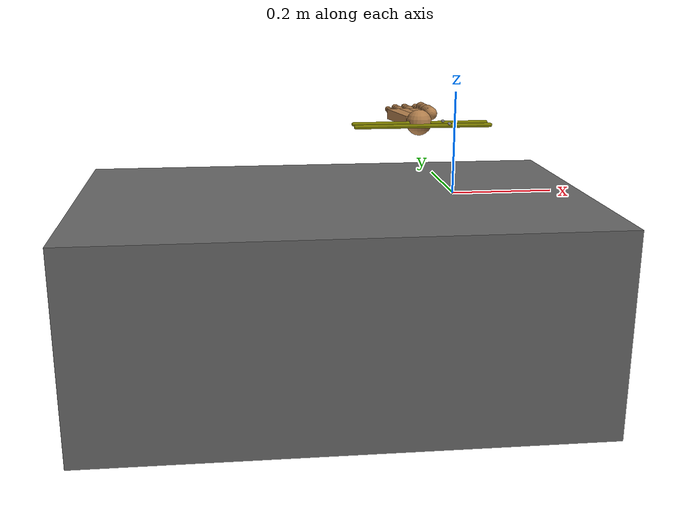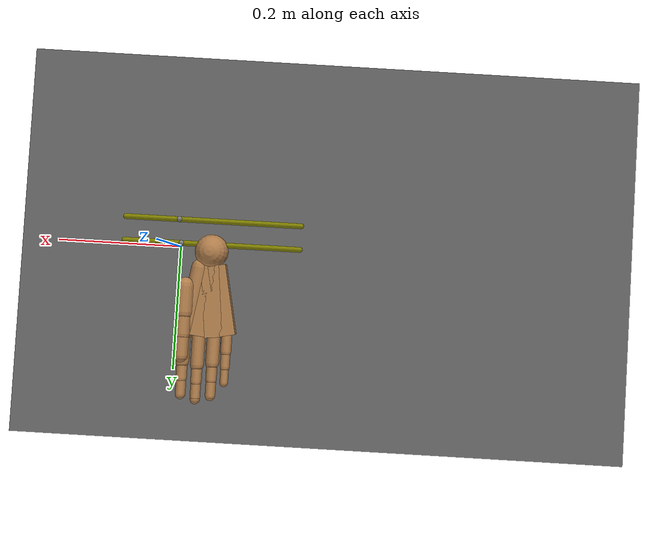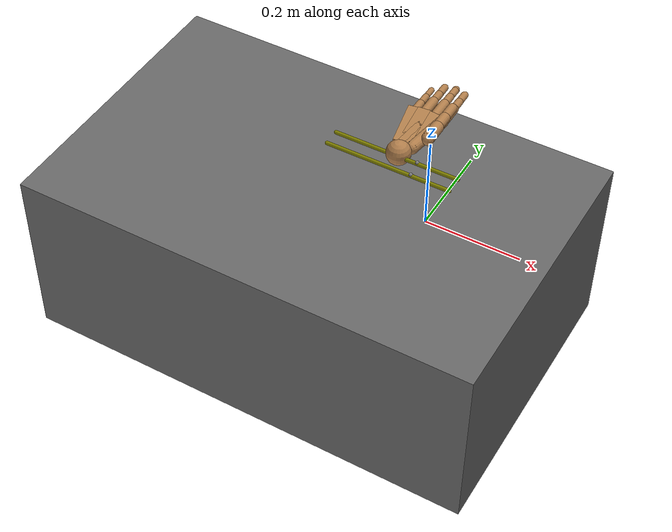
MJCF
<?xml version="1.0" encoding="utf-8"?>
<mujoco>
	<compiler angle="radian"></compiler>
	<size njmax="400" nconmax="400" nuser_jnt="1" nuser_site="1" nuser_tendon="1" nuser_sensor="1" nuser_actuator="16" nstack="600000"></size>
	<option timestep="0.01" iterations="20" apirate="200" impratio="1" noslip_iterations="100"></option>
	<asset>
		<material name="self" rgba=".7 .5 .3 1"></material>
		<material name="table" rgba=".4 .4 .4 1"></material>
		<material name="geom" texture="texgeom" texuniform="true"></material>
		<material name="MatGnd" reflectance="0.5" texture="texplane" texrepeat="2 2" texuniform="true"></material>
		<material name="MatPlane" reflectance="0.05" texture="texplane" texrepeat="1 1" texuniform="true"></material>
		<texture builtin="flat" height="1278" mark="cross" markrgb="1 1 1" name="texgeom" random="0.01" rgb1="0.8 0.6 0.4" rgb2="0.8 0.6 0.4" type="cube" width="127"></texture>
		<texture builtin="gradient" height="100" rgb1="1 1 1" rgb2="0 0 0" type="skybox" width="100"></texture>
		<texture name="texplane" type="2d" builtin="checker" rgb1=".2 .3 .4" rgb2=".1 0.15 0.2" width="512" height="512"></texture>
	</asset>
	<visual>
		<scale forcewidth="0.01" contactwidth="0.003"></scale>
	</visual>
	<default>
		<default class="Adroit">
			<geom friction="1 0.005 0.001" condim="3" margin="0.000" contype="1" conaffinity="1"></geom>
			<joint limited="true" damping="0.05" armature=".001" margin="0.01" frictionloss="0.001"></joint>
			<tendon limited="true"></tendon>
			<site size="0.005" rgba=".4 .9 .4 0"></site>
			<default class="D_Touch">
				<site type="box" size="0.009 0.004 0.013" pos="0 -.004 .018" rgba=".8 .8 .8 0" group="4"></site>
			</default>
			<default class="DC_Hand">
				<geom contype="1" conaffinity="0" material="self" group="2"></geom>
			</default>
		</default>
		<default class="humanoid">
			<geom type="capsule" material="self" group="2"></geom>
			<default class="stiff_medium">
				<joint stiffness="10" damping="2"></joint>
			</default>
			<default class="sensor_site">
				<site type="sphere" size="0.01" group="4" rgba="1 0 0 0"></site>
			</default>
		</default>
	</default>
	<contact>
		<pair geom1="chopstick1" geom2="C_ff" margin="10" gap="100"></pair>
        <pair geom1="chopstick2" geom2="C_ff" margin="10" gap="100"></pair>
		<pair geom1="chopstick1" geom2="C_mf" margin="10" gap="100"></pair>
        <pair geom1="chopstick2" geom2="C_mf" margin="10" gap="100"></pair>
		<pair geom1="chopstick1" geom2="C_th" margin="10" gap="100"></pair>
        <pair geom1="chopstick2" geom2="C_th" margin="10" gap="100"></pair>
		<pair geom1="chopstick1" geom2="C_rf" margin="10" gap="100"></pair>
        <pair geom1="chopstick2" geom2="C_rf" margin="10" gap="100"></pair>
        <pair geom1="chopstick1" geom2="C_lf" margin="10" gap="100"></pair>
		<pair geom1="chopstick2" geom2="C_lf" margin="10" gap="100"></pair>
		<pair geom1="chopstick2" geom2="C_thm" margin="10" gap="100"></pair>
		<pair geom1="chopstick1" geom2="C_ffdistal" condim="4" margin="10" gap="100"></pair>
        <pair geom1="chopstick2" geom2="C_ffdistal" condim="4" margin="10" gap="100"></pair>

		<pair geom1="chopstick1" geom2="C_ffproximal" margin="10" gap="100"></pair>
		<pair geom1="chopstick2" geom2="C_ff_cmc" margin="10" gap="100"></pair>

		<pair geom1="chopstick1" geom2="C_mfdistal" margin="10" gap="100"></pair>
        <pair geom1="chopstick2" geom2="C_mfdistal" margin="10" gap="100"></pair>
		<pair geom1="chopstick1" geom2="C_thdistal" margin="10" gap="100"></pair>
		<pair geom1="chopstick2" geom2="C_thdistal" margin="10" gap="100"></pair>
		<pair geom1="chopstick1" geom2="C_rfdistal" margin="10" gap="100"></pair>
        <pair geom1="chopstick2" geom2="C_rfdistal" margin="10" gap="100"></pair>
		<pair geom1="chopstick2" geom2="C_thmiddle" margin="10" gap="100"></pair>
		<pair geom1="chopstick1" geom2="C_lfdistal" margin="10" gap="100"></pair>
        <pair geom1="chopstick2" geom2="C_lfdistal" margin="10" gap="100"></pair>
		<pair geom1="chopstick2" geom2="C_ff_cmc_trick" margin="10" gap="100"></pair>
		<pair geom1="chopstick2" geom2="C_trick" condim="3" margin="0" gap="0"></pair>
		<pair geom1="chopstick2" geom2="C_ff_cmc" condim="3" margin="0" gap="0"></pair>
		<pair geom1="chopstick1" geom2="C_ffproximal_trick" margin="10" gap="100"></pair>
		<pair geom1="chopstick1" geom2="C_ffproximal" condim="3" margin="0" gap="0"></pair>

		<pair geom1="C_rfmiddle" geom2="C_mf" margin="10" gap="100"></pair>
		<pair geom1="C_rfmiddle" geom2="C_mfdistal" margin="10" gap="100"></pair>
		<pair geom1="C_rfmiddle" geom2="C_mfmiddle" margin="10" gap="100"></pair>
		<pair geom1="C_rfmiddle" geom2="C_mfproximal" margin="10" gap="100"></pair>
		<pair geom1="C_rfdistal" geom2="C_mf" margin="10" gap="100"></pair>
		<pair geom1="C_rfdistal" geom2="C_mfmiddle" margin="10" gap="100"></pair>
		<pair geom1="C_rfdistal" geom2="C_mfproximal" margin="10" gap="100"></pair>
		<pair geom1="C_rfproximal" geom2="C_mf" margin="10" gap="100"></pair>
		<pair geom1="C_rfproximal" geom2="C_mfdistal" margin="10" gap="100"></pair>
		<pair geom1="C_rfproximal" geom2="C_mfmiddle" margin="10" gap="100"></pair>
		<pair geom1="C_rfproximal" geom2="C_mfproximal" margin="10" gap="100"></pair>
		<pair geom1="C_mfmiddle" geom2="C_ff" margin="10" gap="100"></pair>
		<pair geom1="C_mfmiddle" geom2="C_ffdistal" margin="10" gap="100"></pair>
		<pair geom1="C_mfmiddle" geom2="C_ffmiddle" margin="10" gap="100"></pair>
		<pair geom1="C_mfmiddle" geom2="C_ffproximal" margin="10" gap="100"></pair>
		<pair geom1="C_mfdistal" geom2="C_ff" margin="10" gap="100"></pair>
		<pair geom1="C_mfdistal" geom2="C_ffmiddle" margin="10" gap="100"></pair>
		<pair geom1="C_mfdistal" geom2="C_ffproximal" margin="10" gap="100"></pair>
		<pair geom1="C_mfproximal" geom2="C_ff" margin="10" gap="100"></pair>
		<pair geom1="C_mfproximal" geom2="C_ffdistal" margin="10" gap="100"></pair>
		<pair geom1="C_mfproximal" geom2="C_ffmiddle" margin="10" gap="100"></pair>
		<pair geom1="C_mfproximal" geom2="C_ffproximal" margin="10" gap="100"></pair>
		<pair geom1="C_rfmiddle" geom2="C_lf" margin="10" gap="100"></pair>
		<pair geom1="C_rfmiddle" geom2="C_lfdistal" margin="10" gap="100"></pair>
		<pair geom1="C_rfmiddle" geom2="C_lfmiddle" margin="10" gap="100"></pair>
		<pair geom1="C_rfmiddle" geom2="C_lfproximal" margin="10" gap="100"></pair>
		<pair geom1="C_rfdistal" geom2="C_lf" margin="10" gap="100"></pair>
		<pair geom1="C_rfdistal" geom2="C_lfmiddle" margin="10" gap="100"></pair>
		<pair geom1="C_rfdistal" geom2="C_lfproximal" margin="10" gap="100"></pair>
		<pair geom1="C_rfproximal" geom2="C_lf" margin="10" gap="100"></pair>
		<pair geom1="C_rfproximal" geom2="C_lfdistal" margin="10" gap="100"></pair>
		<pair geom1="C_rfproximal" geom2="C_lfmiddle" margin="10" gap="100"></pair>
		<pair geom1="C_rfproximal" geom2="C_lfproximal" margin="10" gap="100"></pair>
	</contact>
	<tendon>
		<fixed name="T_FFJ3r" range="-0.018 0.018" user="1204">
			<joint joint="FFJ3" coef="0.010"></joint>
		</fixed>
		<fixed name="T_FFJ3l" range="-0.018 0.018" user="1205">
			<joint joint="FFJ3" coef="-0.010"></joint>
		</fixed>
		<fixed name="T_FFJ2u" range="-0.007 0.030" user="1202">
			<joint joint="FFJ2" coef="0.010"></joint>
		</fixed>
		<fixed name="T_FFJ2d" range="-0.030 0.007" user="1203">
			<joint joint="FFJ2" coef="-0.010"></joint>
		</fixed>
		<fixed name="T_FFJ1c" range="-0.0010 0.0010">
			<joint joint="FFJ0" coef="0.00705"></joint>
			<joint joint="FFJ1" coef="-0.00805"></joint>
		</fixed>
		<fixed name="T_FFJ1u" range="-0.007 0.030" user="1200">
			<joint joint="FFJ0" coef="0.00705"></joint>
			<joint joint="FFJ1" coef="0.00805"></joint>
		</fixed>
		<fixed name="T_FFJ1d" range="-0.030 0.007" user="1201">
			<joint joint="FFJ0" coef="-0.00705"></joint>
			<joint joint="FFJ1" coef="-0.00805"></joint>
		</fixed>
		<fixed name="T_MFJ3r" range="-0.018 0.018" user="1210">
			<joint joint="MFJ3" coef="0.010"></joint>
		</fixed>
		<fixed name="T_MFJ3l" range="-0.018 0.018" user="1211">
			<joint joint="MFJ3" coef="-0.010"></joint>
		</fixed>
		<fixed name="T_MFJ2u" range="-0.007 0.030" user="1208">
			<joint joint="MFJ2" coef="0.010"></joint>
		</fixed>
		<fixed name="T_MFJ2d" range="-0.030 0.007" user="1209">
			<joint joint="MFJ2" coef="-0.010"></joint>
		</fixed>
		<fixed name="T_MFJ1c" range="-0.001 0.001">
			<joint joint="MFJ0" coef="0.00705"></joint>
			<joint joint="MFJ1" coef="-0.00805"></joint>
		</fixed>
		<fixed name="T_MFJ1u" range="-0.007 0.030" user="1206">
			<joint joint="MFJ0" coef="0.00705"></joint>
			<joint joint="MFJ1" coef="0.00805"></joint>
		</fixed>
		<fixed name="T_MFJ1d" range="-0.030 0.007" user="1207">
			<joint joint="MFJ0" coef="-0.00705"></joint>
			<joint joint="MFJ1" coef="-0.00805"></joint>
		</fixed>
		<fixed name="T_RFJ3r" range="-0.018 0.018" user="1216">
			<joint joint="RFJ3" coef="0.010"></joint>
		</fixed>
		<fixed name="T_RFJ3l" range="-0.018 0.018" user="1217">
			<joint joint="RFJ3" coef="-0.010"></joint>
		</fixed>
		<fixed name="T_RFJ2u" range="-0.007 0.030" user="1214">
			<joint joint="RFJ2" coef="0.010"></joint>
		</fixed>
		<fixed name="T_RFJ2d" range="-0.030 0.007" user="1215">
			<joint joint="RFJ2" coef="-0.010"></joint>
		</fixed>
		<fixed name="T_RFJ1c" range="-0.001 0.001">
			<joint joint="RFJ0" coef="0.00705"></joint>
			<joint joint="RFJ1" coef="-0.00805"></joint>
		</fixed>
		<fixed name="T_RFJ1u" range="-0.007 0.030" user="1212">
			<joint joint="RFJ0" coef="0.00705"></joint>
			<joint joint="RFJ1" coef="0.00805"></joint>
		</fixed>
		<fixed name="T_RFJ1d" range="-0.030 0.007" user="1213">
			<joint joint="RFJ0" coef="-0.00705"></joint>
			<joint joint="RFJ1" coef="-0.00805"></joint>
		</fixed>
		<fixed name="T_THJ4a" range="-0.018 0.018" user="1234">
			<joint joint="THJ4" coef="0.01636"></joint>
		</fixed>
		<fixed name="T_THJ4c" range="-0.018 0.018" user="1235">
			<joint joint="THJ4" coef="-0.01636"></joint>
		</fixed>
		<fixed name="T_THJ3u" range="-0.007 0.030" user="1232">
			<joint joint="THJ3" coef="0.010"></joint>
		</fixed>
		<fixed name="T_THJ3d" range="-0.030 0.007" user="1233">
			<joint joint="THJ3" coef="-0.010"></joint>
		</fixed>
		<fixed name="T_THJ2u" range="-0.018 0.018" user="1230">
			<joint joint="THJ2" coef="0.011"></joint>
		</fixed>
		<fixed name="T_THJ2d" range="-0.018 0.018" user="1231">
			<joint joint="THJ2" coef="-0.011"></joint>
		</fixed>
		<fixed name="T_THJ1r" range="-0.018 0.018" user="1228">
			<joint joint="THJ1" coef="0.011"></joint>
		</fixed>
		<fixed name="T_THJ1l" range="-0.018 0.018" user="1229">
			<joint joint="THJ1" coef="-0.011"></joint>
		</fixed>
		<fixed name="T_THJ0r" range="-0.030 0.007" user="1226">
			<joint joint="THJ0" coef="0.009"></joint>
		</fixed>
		<fixed name="T_THJ0l" range="-0.007 0.030" user="1227">
			<joint joint="THJ0" coef="-0.009"></joint>
		</fixed>
		<fixed name="T_LFJ3r" range="-0.018 0.018">
			<joint joint="LFJ3" coef="0.010"></joint>
		</fixed>
		<fixed name="T_LFJ3l" range="-0.018 0.018">
			<joint joint="LFJ3" coef="-0.010"></joint>
		</fixed>
		<fixed name="T_LFJ2u" range="-0.007 0.030">
			<joint joint="LFJ2" coef="0.010"></joint>
		</fixed>
		<fixed name="T_LFJ2d" range="-0.030 0.007">
			<joint joint="LFJ2" coef="-0.010"></joint>
		</fixed>
		<fixed name="T_LFJ1c" range="-0.001 0.001">
			<joint joint="LFJ0" coef="0.00705"></joint>
			<joint joint="LFJ1" coef="-0.00805"></joint>
		</fixed>
		<fixed name="T_LFJ1u" range="-0.007 0.030">
			<joint joint="LFJ0" coef="0.00705"></joint>
			<joint joint="LFJ1" coef="0.00805"></joint>
		</fixed>
		<fixed name="T_LFJ1d" range="-0.030 0.007">
			<joint joint="LFJ0" coef="-0.00705"></joint>
			<joint joint="LFJ1" coef="-0.00805"></joint>
		</fixed>
	</tendon>
	<sensor>
		<touch name="sensor_end1" site="end1"></touch>
		<touch name="sensor_end2" site="end2"></touch>
		<touch name="sensor_th" site="S_thtip"></touch>
		<touch name="sensor_ff" site="S_fftip"></touch>
		<touch name="sensor_mf" site="S_mftip"></touch>
		<touch name="sensor_rf" site="S_rftip"></touch>
	</sensor>
	<equality>
		<connect body1="chopstick1" body2="thdistal" anchor="0.045 0.0 0.0025" active="true"></connect>
		<connect body1="chopstick2" body2="thmiddle" anchor="0.06 0.0 0.0025" active="true"></connect>
	</equality>
	<actuator>
		<motor name="A_WRJ0" user="2036" joint="WRJ0" ctrlrange="-50   50" gear="1"></motor>
		<motor name="A_WRJ1" user="2038" joint="WRJ1" ctrlrange="-50   50" gear="1"></motor>
		<motor name="A_WRJ2" joint="WRJ2" ctrlrange="-50   50" gear="1"></motor>
		<motor name="A_FFJ_CMC_X" joint="FFJ_CMC_X" ctrlrange="-10   10" gear="1"></motor>
		<motor name="A_FFJ_CMC_Z" joint="FFJ_CMC_Z" ctrlrange="-10   10" gear="1"></motor>
		<motor name="A_FFJ3" user="2004" joint="FFJ3" ctrlrange="-10   10" gear="1"></motor>
		<motor name="A_FFJ2" user="2002" joint="FFJ2" ctrlrange="-10      10 " gear="1"></motor>
		<motor name="A_FFJ1" user="2000" joint="FFJ1" ctrlrange="-10       10 " gear="1"></motor>
		<motor name="A_FFJ0" user="2000" joint="FFJ0" ctrlrange="-10     10 " gear="1"></motor>
		<motor name="A_MFJ_CMC_X" joint="MFJ_CMC_X" ctrlrange="-10   10" gear="1"></motor>
		<motor name="A_MFJ_CMC_Z" joint="MFJ_CMC_Z" ctrlrange="-10   10" gear="1"></motor>
		<motor name="A_MFJ3" user="2010" joint="MFJ3" ctrlrange="-10   10" gear="1"></motor>
		<motor name="A_MFJ2" user="2008" joint="MFJ2" ctrlrange="-10       10 " gear="1"></motor>
		<motor name="A_MFJ1" user="2006" joint="MFJ1" ctrlrange="-10       10 " gear="1"></motor>
		<motor name="A_MFJ0" user="2006" joint="MFJ0" ctrlrange="-10       10 " gear="1"></motor>
		<motor name="A_RFJ_CMC_X" joint="RFJ_CMC_X" ctrlrange="-10   10" gear="1"></motor>
		<motor name="A_RFJ_CMC_Z" joint="RFJ_CMC_Z" ctrlrange="-10   10" gear="1"></motor>
		<motor name="A_RFJ3" user="2016" joint="RFJ3" ctrlrange="-10   10" gear="1"></motor>
		<motor name="A_RFJ2" user="2014" joint="RFJ2" ctrlrange="-10       10 " gear="1"></motor>
		<motor name="A_RFJ1" user="2012" joint="RFJ1" ctrlrange="-10       10 " gear="1"></motor>
		<motor name="A_RFJ0" user="2012" joint="RFJ0" ctrlrange="-10       10 " gear="1"></motor>
		<motor name="A_THJ4" user="2034" joint="THJ4" ctrlrange="-10      10   " gear="1"></motor>
		<motor name="A_THJ3" user="2032" joint="THJ3" ctrlrange="-10      10 " gear="1"></motor>
		<motor name="A_THJ2" user="2030" joint="THJ2" ctrlrange="-10   10" gear="1"></motor>
		<motor name="A_THJ1" user="2028" joint="THJ1" ctrlrange="-10   10" gear="1"></motor>
		<motor name="A_THJ0" user="2026" joint="THJ0" ctrlrange="-10  10   " gear="1"></motor>
		<motor name="A_LFJ_CMC_X" joint="LFJ_CMC_X" ctrlrange="-10   10" gear="1"></motor>
		<motor name="A_LFJ_CMC_Z" joint="LFJ_CMC_Z" ctrlrange="-10   10" gear="1"></motor>
		<motor name="A_LFJ3" user="2022" joint="LFJ3" ctrlrange="-10      10 " gear="1"></motor>
		<motor name="A_LFJ2" user="2020" joint="LFJ2" ctrlrange="-10      10 " gear="1"></motor>
		<motor name="A_LFJ1" user="2019" joint="LFJ1" ctrlrange="-10      10 " gear="1"></motor>
		<motor name="A_LFJ0" user="2018" joint="LFJ0" ctrlrange="-10      10 " gear="1"></motor>
	</actuator>
	<worldbody>
		<light diffuse="1 1 1" dir="-0 1.3 -1.3" directional="true" exponent="1" pos="0 0 1.3" specular=".1 .1 .1" castshadow="false"></light>
		<geom name="table" pos="-0.24 0 -0.2" size="0.5 0.315 0.2" material="table" type="box" contype="1" conaffinity="1"></geom>

		<body name="wrist" pos="-0.07 0 0.14" euler="-1.57079632 0 0">
			<inertial pos="0.003 0.000 0.016" quat="0.504 0.496 0.495 0.504" mass="0.3" diaginertia="0.001 0.001 0.001"></inertial>
			<joint name="X" type="slide" pos="0 0 0" axis="1 0 0" range="-1 1"></joint>
			<joint name="Y" type="slide" pos="0 0 0" axis="0 1 0" range="-1 1"></joint>
			<joint name="Z" type="slide" pos="0 0 0" axis="0 0 1" range="-1 1"></joint>
			<joint name="WRJ0" type="hinge" pos="0 0 0" axis="1 0 0" range="-1 1" damping="0" armature=".005" user="1122"></joint>
			<body name="wrist1" pos="0 0 0">
				<geom class="DC_Hand" name="C_wrist1" type="sphere" size="0.001"></geom>
				<joint name="WRJ1" type="hinge" pos="0 0 0" axis="0 1 0" range="-1.2 1.2" damping="0" armature=".005" user="1123"></joint>
				<body name="wrist2" pos="0 0 0">
					<joint name="WRJ2" type="hinge" pos="0 0 0" axis="0 0 1" range="-3.14 0" damping="0" armature=".005"></joint>
					<geom class="DC_Hand" name="C_wrist" type="sphere" pos="0 0 0.01" quat=".707 .707 0 0" size=".025"></geom>
					<body name="palm" pos="0 0 0.034">
						<body name="ff_cmc" pos="0.033 0 0.095">
							<joint name="FFJ_CMC_X" type="hinge" pos="-0.02 0 -0.095" axis="0.095 0 -0.02" range="0 0.001"></joint>
							<joint name="FFJ_CMC_Z" type="hinge" pos="-0.02 0 -0.095" axis="0.02 0 0.095" range="-0.001 0.001"></joint>
							<geom class="DC_Hand" name="C_ff_cmc" type="capsule" pos="-0.01 0 -0.0475" size="0.013 .0475" euler="0 0.16 0"></geom>
							<geom class="DC_Hand" name="C_ff_cmc_trick" type="capsule" pos="-0.01 0 -0.0475" size="0.013 .0475" euler="0 0.16 0"></geom>
							<body name="ffknuckle" pos="0.0 0 0.0">
								<inertial pos="-0.000 0.000 0.000" quat="0.520 0.854 0.006 -0.003" mass="0.008" diaginertia="0.00001 0.00001 0.00001"></inertial>
								<joint name="FFJ3" type="hinge" pos="0 0 0" axis="0 1 0" range="-0.136 0.136" user="1103"></joint>
								<body name="ffproximal" pos="0 0 0">
									<inertial pos="0.000 0.000 0.023" quat="0.707 -0.004 0.004 0.707" mass="0.014" diaginertia="0.00001 0.00001 0.00001"></inertial>
									<joint name="FFJ2" type="hinge" pos="0 0 0" axis="1 0 0" range="0 1.571" user="1102"></joint>
									<geom class="DC_Hand" name="C_ffproximal" type="capsule" pos="0 0 .0225" size=".01 .0225"></geom>
									<geom class="DC_Hand" name="C_ffproximal_trick" type="capsule" pos="0 0 .0225" size=".01 .0225"></geom>
									<body name="ffmiddle" pos="0 0 0.045">
										<inertial pos="-0.000 -0.000 0.011" quat="0.707 0.000 -0.000 0.707" mass="0.012" diaginertia="0.00001 0.00001 0.00001"></inertial>
										<joint name="FFJ1" type="hinge" pos="0 0 0" axis="1 0 0" range="0 1.571" user="1101"></joint>
										<geom class="DC_Hand" name="C_ffmiddle" type="capsule" pos="0 0 .0125" size=".00805 .0125"></geom>
										<body name="ffdistal" pos="0 0 0.025">
											<inertial pos="0 -0.000 0.015" quat="0.707 -0.003 0.003 0.707" mass="0.010" diaginertia="0.00001 0.00001 0.00001"></inertial>
											<joint name="FFJ0" type="hinge" pos="0 0 0" axis="1 0 0" range="0 1.571" user="1100"></joint>
											<geom class="DC_Hand" name="C_ffdistal" type="capsule" pos="0 -.00 .012" size=".0075 .011 " condim="4" euler="0 0 0"></geom>
											<geom class="DC_Hand" name="C_ff" type="sphere" pos="0 0 .0195" size=".0075 " condim="4"></geom>
											<site name="S_fftip" type="capsule" pos="0 -.00 .012" size=".0075 .011 " rgba = '0 0 0 0' euler="0 0 0"></site>
											<site class="D_Touch" name="Tch_fftip"></site>
										</body>
									</body>
								</body>
							</body>
						</body>
						<body name="mf_cmc" pos="0.011 0 0.099">
							<joint name="MFJ_CMC_X" type="hinge" pos="-0.011 0 -0.099" axis="0.099 0 -0.011" range="0 0.01"></joint>
							<joint name="MFJ_CMC_Z" type="hinge" pos="-0.011 0 -0.099" axis="0.011 0 0.099" range="-0.2 0.2"></joint>
							<geom class="DC_Hand" name="C_mf_cmc" type="box" pos="-0.0055 0 -0.0495" size=".013 0.01 .052" euler="0 0.11 0"></geom>
							<body name="mfknuckle" pos="0.0 0 0.0">
								<inertial pos="-0.000 0.000 0.000" quat="0.520 0.854 0.006 -0.003" mass="0.008" diaginertia="0.00001 0.00001 0.00001"></inertial>
								<joint name="MFJ3" type="hinge" pos="0 0 0" axis="0 1 0" range="-0.136 0.136" user="1107"></joint>
								<body name="mfproximal" pos="0 0 0">
									<inertial pos="0.000 0.000 0.023" quat="0.707 -0.004 0.004 0.707" mass="0.014" diaginertia="0.00001 0.00001 0.00001"></inertial>
									<joint name="MFJ2" type="hinge" pos="0 0 0" axis="1 0 0" range="0 1.571" user="1106"></joint>
									<geom class="DC_Hand" name="C_mfproximal" type="capsule" pos="0 0 .0225" size=".01 .0225"></geom>
									<body name="mfmiddle" pos="0 0 0.045">
										<inertial pos="-0.000 -0.000 0.012" quat="0.707 0.000 -0.000 0.707" mass="0.012" diaginertia="0.00001 0.00001 0.00001"></inertial>
										<joint name="MFJ1" type="hinge" pos="0 0 0" axis="1 0 0" range="0 1.571" user="1105"></joint>
										<geom class="DC_Hand" name="C_mfmiddle" type="capsule" pos="0 0 .0125" size=".00805 .0125"></geom>
										<body name="mfdistal" pos="0 0 0.025">
											<inertial pos="0 -0.000 0.015" quat="0.707 -0.003 0.003 0.707" mass="0.010" diaginertia="0.00001 0.00001 0.00001"></inertial>
											<joint name="MFJ0" type="hinge" pos="0 0 0" axis="1 0 0" range="0 1.571" user="1104"></joint>
											<geom class="DC_Hand" name="C_mfdistal" type="capsule" pos="0 0 .012" size=".0075 .011 " condim="4" euler="0 0 0"></geom>
											<geom class="DC_Hand" name="C_mf" type="sphere" pos="0 0 .025" size=".0075 " condim="4"></geom>
											<site name="S_mftip" type="capsule" pos="0 0 .012" size=".0075 .011 "  rgba = '0 0 0 0' euler="0 0 0"></site>
											<site class="D_Touch" name="Tch_mftip"></site>
										</body>
									</body>
								</body>
							</body>
						</body>
						<body name="rf_cmc" pos="-0.011 0 0.095">
							<joint name="RFJ_CMC_X" type="hinge" pos="0.011 0 -0.095" axis="0.095 0 0.011" range="0 0.2"></joint>
							<joint name="RFJ_CMC_Z" type="hinge" pos="0.011 0 -0.095" axis="-0.011 0 0.095" range="-0.0 0.69"></joint>
							<geom class="DC_Hand" name="C_rf_cmc" type="box" pos="0.0055 0 -0.0475" size=".013  0.01 .055" euler="0 -0.11 0"></geom>
							<body name="rfknuckle" pos="-0.0 0 0.0">
								<inertial pos="-0.000 0.000 0.000" quat="0.520 0.854 0.006 -0.003" mass="0.008" diaginertia="0.00001 0.00001 0.00001"></inertial>
								<joint name="RFJ3" type="hinge" pos="0 0 0" axis="0 1 0" range="-0.136 0.136" user="1111"></joint>
								<body name="rfproximal" pos="0 0 0">
									<inertial pos="0.000 0.000 0.023" quat="0.707 -0.004 0.004 0.707" mass="0.014" diaginertia="0.00001 0.00001 0.00001"></inertial>
									<joint name="RFJ2" type="hinge" pos="0 0 0" axis="1 0 0" range="0 1.571" user="1110"></joint>
									<geom class="DC_Hand" name="C_rfproximal" type="capsule" pos="0 0 .0225" size=".01 .0225"></geom>
									<body name="rfmiddle" pos="0 0 0.045">
										<inertial pos="-0.000 -0.000 0.012" quat="0.707 0.000 -0.000 0.707" mass="0.012" diaginertia="0.00001 0.00001 0.00001"></inertial>
										<joint name="RFJ1" type="hinge" pos="0 0 0" axis="1 0 0" range="0 1.571" user="1109"></joint>
										<geom class="DC_Hand" name="C_rfmiddle" type="capsule" pos="0 0 .0125" size=".00805 .0125"></geom>
										<body name="rfdistal" pos="0 0 0.025">
											<inertial pos="0 -0.000 0.015" quat="0.707 -0.003 0.003 0.707" mass="0.010" diaginertia="0.00001 0.00001 0.00001"></inertial>
											<joint name="RFJ0" type="hinge" pos="0 0 0" axis="1 0 0" range="0 1.571" user="1108"></joint>
											<geom class="DC_Hand" name="C_rfdistal" type="capsule" pos="0 -.0 .012" size=".0075 .011 " condim="4" euler="0 0 0"></geom>
											<geom class="DC_Hand" name="C_rf" type="sphere" pos="0 -.0 .016" size=".0075 " condim="4"></geom>
											<site name="S_rftip" type="capsule" pos="0 0 .012" size=".0075 .011 " rgba = '0 0 0 0' euler="0 0 0"></site>
											<site class="D_Touch" name="Tch_rftip"></site>
										</body>
									</body>
								</body>
							</body>
						</body>
						<body name="thbase" pos="0.034 -0.009 0.029" euler="0.  0. 0">
							<inertial pos="0 0 0" mass="0.010" diaginertia="0.00001 0.00001 0.00001"></inertial>
							<joint name="THJ4" type="hinge" pos="0 0 0" axis="0 0 -1" range="-0.01 0.01" user="1121"></joint>
							<joint name="THJ2" type="hinge" pos="0 0 0" axis="0 1 0" range="-1 1" user="1119"></joint>
							<joint name="THJ3" type="hinge" pos="0 0 0" axis="1 0 0" range="-0. 1" user="1120"></joint>
							<body name="thproximal" pos="0 0 0" euler = "0 0 -0.">

								<inertial pos="-0.000 -0.000 0.017" quat="0.982 -0.000 0.001 0.191" mass="0.016" diaginertia="0.00001 0.00001 0.00001"></inertial>
								<geom class="DC_Hand" name="C_thproximal" type="capsule" pos="0 0 .019" size=".013 .019"></geom>
								<body name="thmiddle" pos="0 0 0.038">
									<inertial pos="0.000 -0.000 0.016" quat="1.000 -0.001 -0.007 0.003" mass="0.016" diaginertia="0.00001 0.00001 0.00001"></inertial>
									<joint name="THJ1" type="hinge" pos="0 0 0" axis="0 1 0" range="-1.57 0" user="1118"></joint>
									<geom class="DC_Hand" name="C_thmiddle" type="capsule" pos="0 0 .016" size=".011 .016"></geom>
									<geom class="DC_Hand" name="C_trick" type="sphere" pos="0 0 0.026" size=".012" condim="4" rgba = '0 0 0 0'></geom>
									<geom class="DC_Hand" name="C_thm" type="capsule" pos="0 0 .016" size=".011 .016"></geom>
									<body name="thdistal" pos="0 0 0.032">
										<inertial pos="0.000 -0.000 0.016" quat="0.999 -0.005 -0.047 0.005" mass="0.016" diaginertia="0.00001 0.00001 0.00001"></inertial>
										<joint name="THJ0" type="hinge" pos="0 0 0" axis="0 1 0" range="-1.571 -0.1" user="1117"></joint>
										<geom class="DC_Hand" name="C_thdistal" type="capsule" pos="0 0 .016837" size=".01 .015" condim="4" euler="0 0 0"></geom>
										<geom class="DC_Hand" name="C_th" type="sphere" pos="-0.01 -0.0 .021837" size=".01" rgba= ' 0 0 0 0'></geom>
										<site name="S_thtip" type="sphere" pos="-0.0 -0. .021837" size=".005 " rgba = '0 0 0 0' euler="0 0 0"></site>
										<site class="D_Touch" name="Tch_thtip" size="0.005 0.011 0.016" pos="-.005 0 0.02"></site>
									</body>
								</body>
							</body>
						</body>
						<body name="lf_cmc" pos="-0.03 0 0.095">
							<joint name="LFJ_CMC_X" type="hinge" pos="0.03 0 -0.095" axis="0.095 0 0.02" range="0 0.2"></joint>
							<joint name="LFJ_CMC_Z" type="hinge" pos="0.03 0 -0.095" axis="-0.02 0 0.095" range="0 0.9"></joint>
							<geom class="DC_Hand" name="C_lf_cmc" type="box" pos="0.01 0 -0.0475" size=".013 0.01 .052" euler="0 -0.2 0"></geom>
							<body name="lfknuckle" pos="-0.0 0 0.0">
								<inertial pos="-0.000 0.000 0.000" quat="0.520 0.854 0.006 -0.003" mass="0.008" diaginertia="0.00001 0.00001 0.00001"></inertial>
								<joint name="LFJ3" type="hinge" pos="0 0 0" axis="0 1 0" range="-0.136 0.136" user="1115"></joint>
								<body name="lfproximal" pos="0 0 0">
									<joint name="LFJ2" type="hinge" pos="0 0 0" axis="1 0 0" range="0 1.571" user="1114"></joint>
									<geom class="DC_Hand" name="C_lfproximal" type="capsule" pos="0 0 .0125" size=".008 .015"></geom>
									<body name="lfmiddle" pos="0 0 0.025">
										<joint name="LFJ1" type="hinge" pos="0 0 0" axis="1 0 0" range="0 1.571" user="1113"></joint>
										<geom class="DC_Hand" name="C_lfmiddle" type="capsule" pos="0 0 .0125" size=".00705 .0125"></geom>
										<body name="lfdistal" pos="0 0 0.025">
											<joint name="LFJ0" type="hinge" pos="0 0 0" axis="1 0 0" range="0 1.571"></joint>
											<geom class="DC_Hand" name="C_lfdistal" type="capsule" pos="0 0 .012" size=".006 .011 " condim="4" euler="0 0 0"></geom>
											<geom class="DC_Hand" name="C_lf" type="sphere" pos="0.00 0 .016" size=".006 "></geom>
											<site name="S_lftip" type="capsule" pos="0 0 .012" size=".006 .011 " rgba = '0 0 0 0' euler="0 0 0"></site>
										</body>
									</body>
								</body>
							</body>
						</body>
					</body>
				</body>
			</body>
		</body>
		<body name="chopstick1" pos="-0.07 -0.0 0.14">
			<joint name="chopstick1" type="free" armature="0.0001"></joint>
			<geom name="chopstick1" density="1000" condim="4" size="0.004 0.13" pos="0.0 -0.0 0.0" type="capsule" quat="0.707 0 0.707 0" solimp="0.99 0.99 0.01" solref="0.01 1" friction="1 0.005 0.0001" rgba="0.5  0.5 0. 1"></geom>
			<site name="end1" pos="-0.13 0.0 0.00" size=".01" type="sphere" rgba="0.5 0 0 0."></site>
			<site name="c_thtip" pos="0.045 0.0 0.0025" size=".004" type="sphere" user = '1'></site>
		</body>
		<body name="chopstick2" pos="-0.07 -0.035 0.14">
			<joint name="chopstick2" type="free" armature="0.0001"></joint>
			<geom name="chopstick2" density="1000" condim="4" size="0.004 0.13" pos="-0.0 -0.0 0.0" type="capsule" quat="0.707 0 0.707 0" solimp="0.99 0.99 0.01" solref="0.01 1" friction="1 0.005 0.0001" rgba="0.5  0.5 0. 1"></geom>
			<site name="c_thmiddle" pos="0.05 0.0 0.0025" size=".004" type="sphere" user = '2'></site>
			<site name="end2" pos="-0.13 0.0 0.0" size=".01" type="sphere" rgba="0.5 0 0 0."></site>
			<site name="origin" pos="-0. 0.0 0.0" size=".01" type="sphere" rgba="1 0 0 0."></site>
		</body>
	</worldbody>
</mujoco>
